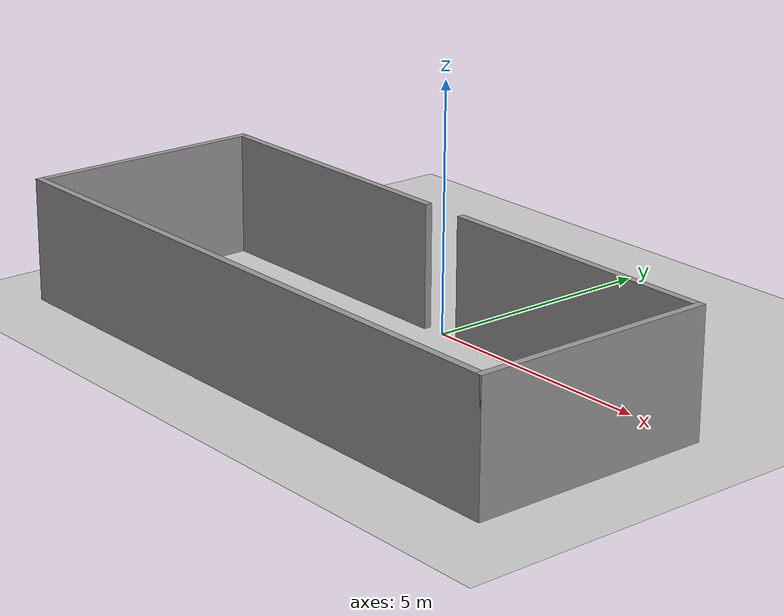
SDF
<sdf version="1.6">
 <world name="default">
  <light name="sun" type="directional">
   <pose>0 0 10 0 -0 0</pose>
   <diffuse>0.8 0.8 0.8 1</diffuse>
   <specular>0.2 0.2 0.2 1</specular>
   <attenuation>
    <range>1000</range>
    <constant>0.9</constant>
    <linear>0.01</linear>
    <quadratic>0.001</quadratic>
   </attenuation>
   <direction>-0.5 0.1 -0.9</direction>
  </light>
  <model name="ground_plane">
   <static>1</static>
   <link name="link">
    <collision name="collision">
     <geometry><plane><normal>0 0 1</normal><size>100 100</size></plane></geometry>
     <surface><friction><ode><mu>100</mu><mu2>50</mu2></ode></friction></surface>
    </collision>
    <visual name="visual">
     <cast_shadows>0</cast_shadows>
     <geometry><plane><normal>0 0 1</normal><size>100 100</size></plane></geometry>
     <material>
      <script><uri>file://media/materials/scripts/gazebo.material</uri><name>Gazebo/Grey</name></script>
     </material>
    </visual>
   </link>
  </model>
  <gravity>0 0 -9.8</gravity>
  <magnetic_field>6e-06 2.3e-05 -4.2e-05</magnetic_field>
  <atmosphere type="adiabatic"/>
  <physics name="default_physics" default="0" type="ode">
   <max_step_size>0.001</max_step_size>
   <real_time_factor>1</real_time_factor>
   <real_time_update_rate>1000</real_time_update_rate>
  </physics>
  <scene><ambient>0.4 0.4 0.4 1</ambient><background>0.7 0.7 0.7 1</background><shadows>1</shadows></scene>
  <spherical_coordinates>
   <surface_model>EARTH_WGS84</surface_model>
   <latitude_deg>0</latitude_deg>
   <longitude_deg>0</longitude_deg>
   <elevation>0</elevation>
   <heading_deg>0</heading_deg>
  </spherical_coordinates>
  <model name="90cm_split">
   <pose>0.058632 -2.42949 0 0 -0 0</pose>
   <link name="Wall_0">
    <collision name="Wall_0_Collision">
     <geometry><box><size>6 0.15 2.5</size></box></geometry>
     <pose>0 0 1.25 0 -0 0</pose>
    </collision>
    <visual name="Wall_0_Visual">
     <pose>0 0 1.25 0 -0 0</pose>
     <geometry><box><size>6 0.15 2.5</size></box></geometry>
     <material>
      <script><uri>file://media/materials/scripts/gazebo.material</uri><name>Gazebo/Grey</name></script>
      <ambient>1 1 1 1</ambient>
     </material>
     <meta><layer>0</layer></meta>
    </visual>
    <pose>-3.5 2.42493 0 0 -0 3.14159</pose>
   </link>
   <link name="Wall_13">
    <collision name="Wall_13_Collision">
     <geometry><box><size>5 0.15 2.5</size></box></geometry>
     <pose>0 0 1.25 0 -0 0</pose>
    </collision>
    <visual name="Wall_13_Visual">
     <pose>0 0 1.25 0 -0 0</pose>
     <geometry><box><size>5 0.15 2.5</size></box></geometry>
     <material>
      <script><uri>file://media/materials/scripts/gazebo.material</uri><name>Gazebo/Grey</name></script>
      <ambient>1 1 1 1</ambient>
     </material>
     <meta><layer>0</layer></meta>
    </visual>
    <pose>-6.425 -6.8e-05 0 0 -0 -1.5708</pose>
   </link>
   <link name="Wall_14">
    <collision name="Wall_14_Collision">
     <geometry><box><size>13 0.15 2.5</size></box></geometry>
     <pose>0 0 1.25 0 -0 0</pose>
    </collision>
    <visual name="Wall_14_Visual">
     <pose>0 0 1.25 0 -0 0</pose>
     <geometry><box><size>13 0.15 2.5</size></box></geometry>
     <material>
      <script><uri>file://media/materials/scripts/gazebo.material</uri><name>Gazebo/Grey</name></script>
      <ambient>1 1 1 1</ambient>
     </material>
     <meta><layer>0</layer></meta>
    </visual>
    <pose>0 -2.42507 0 0 -0 0</pose>
   </link>
   <link name="Wall_15">
    <collision name="Wall_15_Collision">
     <geometry><box><size>5 0.15 2.5</size></box></geometry>
     <pose>0 0 1.25 0 -0 0</pose>
    </collision>
    <visual name="Wall_15_Visual">
     <pose>0 0 1.25 0 -0 0</pose>
     <geometry><box><size>5 0.15 2.5</size></box></geometry>
     <material>
      <script><uri>file://media/materials/scripts/gazebo.material</uri><name>Gazebo/Grey</name></script>
      <ambient>1 1 1 1</ambient>
     </material>
     <meta><layer>0</layer></meta>
    </visual>
    <pose>6.425 -6.8e-05 0 0 -0 1.5708</pose>
   </link>
   <link name="Wall_2">
    <collision name="Wall_2_Collision">
     <geometry><box><size>6 0.15 2.5</size></box></geometry>
     <pose>0 0 1.25 0 -0 0</pose>
    </collision>
    <visual name="Wall_2_Visual">
     <pose>0 0 1.25 0 -0 0</pose>
     <geometry><box><size>6 0.15 2.5</size></box></geometry>
     <material>
      <script><uri>file://media/materials/scripts/gazebo.material</uri><name>Gazebo/Grey</name></script>
      <ambient>1 1 1 1</ambient>
     </material>
     <meta><layer>0</layer></meta>
    </visual>
    <pose>3.39535 2.42507 0 0 -0 0</pose>
   </link>
   <static>1</static>
  </model>
 </world>
</sdf>
